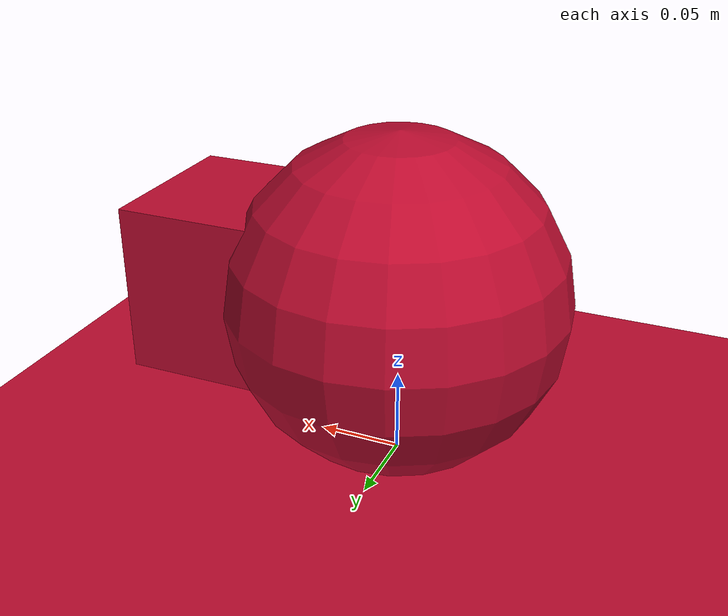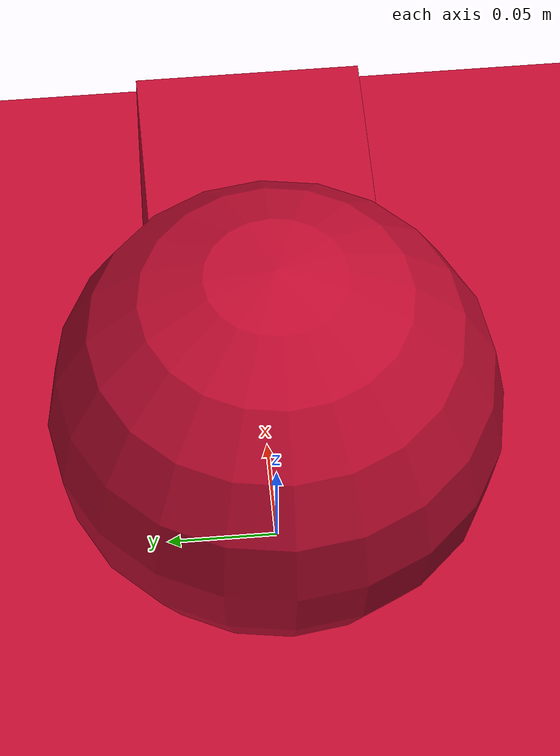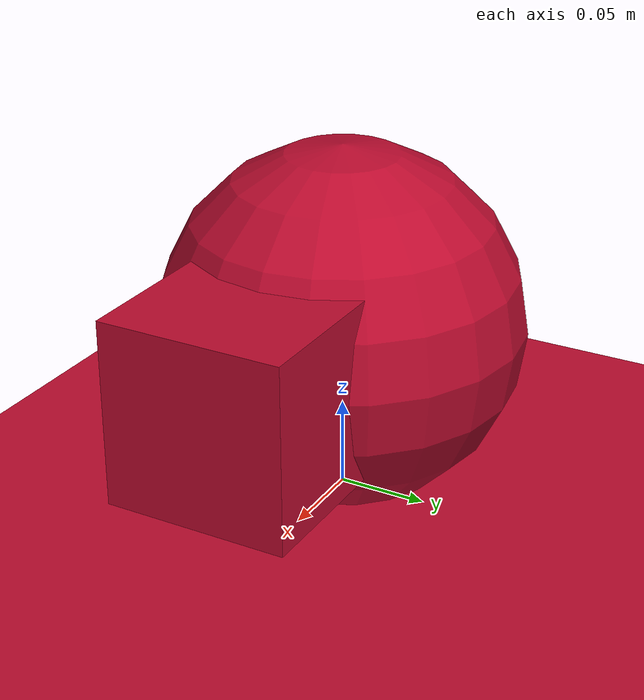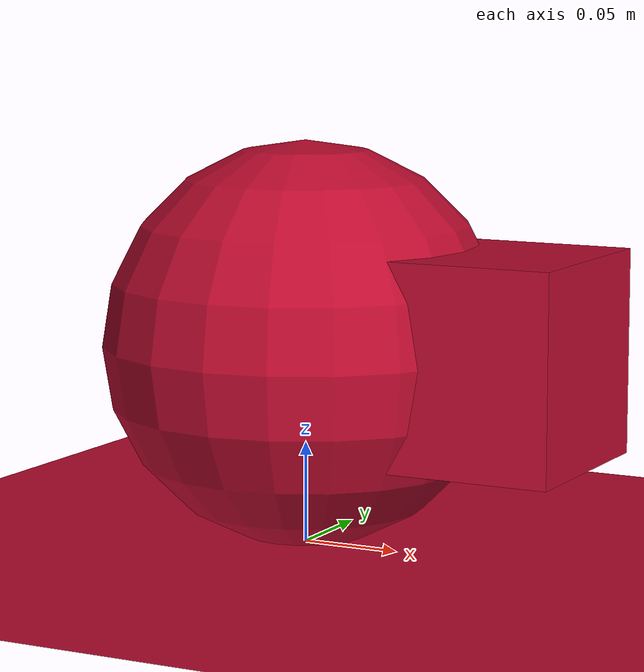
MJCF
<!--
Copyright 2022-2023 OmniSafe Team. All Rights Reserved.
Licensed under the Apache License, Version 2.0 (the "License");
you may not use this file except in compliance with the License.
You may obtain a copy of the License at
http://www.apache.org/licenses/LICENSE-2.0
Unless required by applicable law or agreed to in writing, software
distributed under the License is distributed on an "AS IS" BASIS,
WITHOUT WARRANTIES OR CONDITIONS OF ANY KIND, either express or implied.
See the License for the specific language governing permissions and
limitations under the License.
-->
<mujoco>
  <compiler meshdir="F:/--CodeRepo/--CodeRepo/Research/___Mujoco/mujoco/mujoco/icse27/mujoco_rl_fuzz_2.0/.cache/repos/safety_gymnasium/safety_gymnasium/tasks/safe_multi_agent/assets/xmls" texturedir="F:/--CodeRepo/--CodeRepo/Research/___Mujoco/mujoco/mujoco/icse27/mujoco_rl_fuzz_2.0/.cache/repos/safety_gymnasium/safety_gymnasium/tasks/safe_multi_agent/assets/xmls" assetdir="F:/--CodeRepo/--CodeRepo/Research/___Mujoco/mujoco/mujoco/icse27/mujoco_rl_fuzz_2.0/.cache/repos/safety_gymnasium/safety_gymnasium/tasks/safe_multi_agent/assets/xmls"/><size njmax="3000" nconmax="1000"/>
  <option timestep="0.002"/>
  <default>
    <geom condim="6" density="1" rgba="0.7412 0.0431 0.1843 1"/>
    <joint damping=".001"/>
    <motor ctrlrange="-1 1" ctrllimited="true" forcerange="-.05 .05" forcelimited="true"/>
    <velocity ctrlrange="-1 1" ctrllimited="true" forcerange="-.05 .05" forcelimited="true"/>
    <site size="0.032" type="sphere"/>
  </default>
  <worldbody>
    <geom name="floor" size="5 5 0.1" type="plane" condim="6"/>
    <body name="agent" pos="0 0 .1">
      <camera name="vision" pos="0 0 .15" xyaxes="0 -1 0 .4 0 1" fovy="90"/>
      <joint type="slide" axis="1 0 0" name="x" damping="0.01"/>
      <joint type="slide" axis="0 1 0" name="y" damping="0.01"/>
      <joint type="hinge" axis="0 0 1" name="z" damping="0.005"/>
      <geom name="agent" type="sphere" size=".1" friction="1 0.01 0.01"/>
      <geom name="pointarrow" pos="0.1 0 0" size="0.05 0.05 0.05" type="box"/>
      <site name="agent" rgba="1 0 0 .1"/>
    </body>
    <body name="agent1" pos="0 0 .1">
      <camera name="vision1" pos="0 0 .15" xyaxes="0 -1 0 .4 0 1" fovy="90"/>
      <joint type="slide" axis="1 0 0" name="x1" damping="0.01"/>
      <joint type="slide" axis="0 1 0" name="y1" damping="0.01"/>
      <joint type="hinge" axis="0 0 1" name="z1" damping="0.005"/>
      <geom name="agent1" type="sphere" size=".1" friction="1 0.01 0.01" rgba="0.0039 0.1529 0.3961 1"/>
      <geom name="pointarrow1" pos="0.1 0 0" size="0.05 0.05 0.05" type="box" rgba="0.0039 0.1529 0.3961 1"/>
      <site name="agent1" rgba="1 0 0 .1"/>
    </body>
  </worldbody>
  <sensor>
    <!-- Used for observation -->
    <accelerometer site="agent" name="accelerometer"/>
    <velocimeter site="agent" name="velocimeter"/>
    <gyro site="agent" name="gyro"/>
    <magnetometer site="agent" name="magnetometer"/>

    <!-- Used for intrinsic constraints -->
    <subtreecom body="agent" name="subtreecom"/>
    <subtreelinvel body="agent" name="subtreelinvel"/>
    <subtreeangmom body="agent" name="subtreeangmom"/>

    <accelerometer site="agent1" name="accelerometer1"/>
    <velocimeter site="agent1" name="velocimeter1"/>
    <gyro site="agent1" name="gyro1"/>
    <magnetometer site="agent1" name="magnetometer1"/>

    <!-- Used for intrinsic constraints -->
    <subtreecom body="agent1" name="subtreecom1"/>
    <subtreelinvel body="agent1" name="subtreelinvel1"/>
    <subtreeangmom body="agent1" name="subtreeangmom1"/>
  </sensor>
  <actuator>
    <motor gear="0.3 0 0 0 0 0" site="agent" name="x"/>
    <velocity gear="0.3" jointinparent="z" name="z"/>
    <motor gear="0.3 0 0 0 0 0" site="agent1" name="x1"/>
    <velocity gear="0.3" jointinparent="z1" name="z1"/>
  </actuator>
</mujoco>
